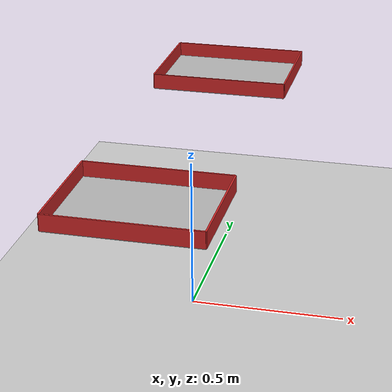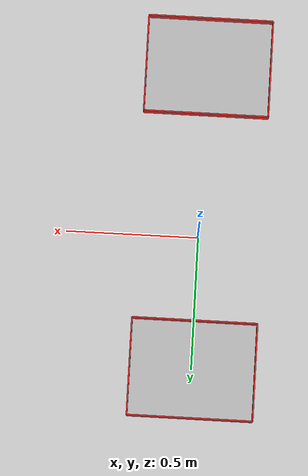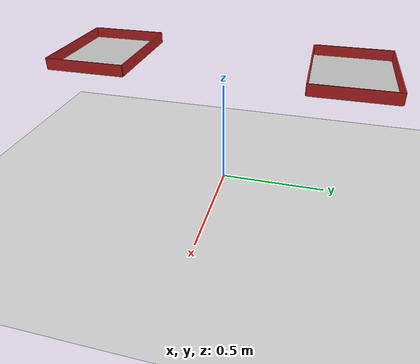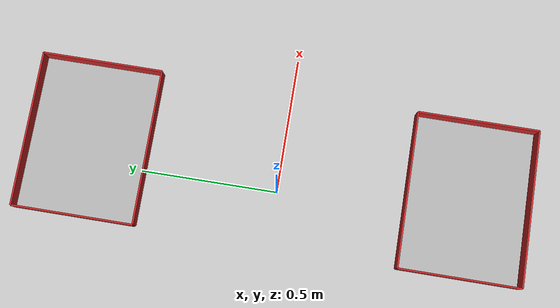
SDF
<sdf version="1.5">
 <world name="default">
  <include><uri>model://ground_plane</uri></include>
  <include><uri>model://sun</uri></include>
  <scene><shadows>0</shadows></scene>
  <model name="storage_left">
   <static>true</static>
   <include><uri>model://storage</uri></include>
   <pose>0 0.55 0.6 0 0 0</pose>
  </model>
  <model name="storage_right">
   <static>true</static>
   <include><uri>model://storage</uri></include>
   <pose>0 -0.55 0.6 0 0 0</pose>
  </model>
  <plugin name="gazebo_ros_state" filename="libgazebo_ros_state.so">
   <ros>
    <namespace>/ros2_grasp</namespace>
    <argument>model_states:=model_states</argument>
    <argument>link_states:=link_states</argument>
   </ros>
   <update_rate>1.0</update_rate>
  </plugin>
  <plugin name="gazebo_ros_properties" filename="libgazebo_ros_properties.so">
   <ros><namespace>/ros2_grasp</namespace></ros>
  </plugin>
 </world>
</sdf>

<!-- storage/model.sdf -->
<sdf version='1.6'>
  <model name='storage'>
    <link name='storage-base'>
      <pose frame=''>0 0 0 0 -0 0</pose>
      <inertial>
        <pose frame=''>0 0 0 0 -0 0</pose>
        <mass>1</mass>
        <inertia>
          <ixx>1</ixx>
          <ixy>0.01</ixy>
          <ixz>0.01</ixz>
          <iyy>1</iyy>
          <iyz>0.01</iyz>
          <izz>1</izz>
        </inertia>
      </inertial>
      <collision name='storage-base_collision'>
        <pose frame=''>0 0 0 0 -0 0</pose>
        <geometry>
          <box>
            <size>0.45 0.35 0.005</size>
          </box>
        </geometry>
        <surface>
          <contact>
            <ode>
              <kp>1e+06</kp>
              <kd>1</kd>
              <min_depth>0.001</min_depth>
            </ode>
          </contact>
          <friction>
            <ode>
              <mu>1</mu>
              <mu2>1</mu2>
            </ode>
          </friction>
        </surface>
      </collision>
      <collision name='storage-base_collision_1'>
        <pose frame=''>0 -0.175 0.025 1.57 -0 0</pose>
        <geometry>
          <box>
            <size>0.45 0.05 0.005</size>
          </box>
        </geometry>
        <surface>
          <contact>
            <ode>
              <kp>1e+06</kp>
              <kd>1</kd>
              <min_depth>0.001</min_depth>
            </ode>
          </contact>
          <friction>
            <ode>
              <mu>1</mu>
              <mu2>1</mu2>
            </ode>
          </friction>
        </surface>
      </collision>
      <collision name='storage-base_collision_2'>
        <pose frame=''>0 0.175 0.025 1.57 -0 0</pose>
        <geometry>
          <box>
            <size>0.45 0.05 0.005</size>
          </box>
        </geometry>
        <surface>
          <contact>
            <ode>
              <kp>1e+06</kp>
              <kd>1</kd>
              <min_depth>0.001</min_depth>
            </ode>
          </contact>
          <friction>
            <ode>
              <mu>1</mu>
              <mu2>1</mu2>
            </ode>
          </friction>
        </surface>
      </collision>
      <collision name='storage-base_collision_3'>
        <pose frame=''>0.225 0 0.025 3.14159 1.57079 3.14159</pose>
        <geometry>
          <box>
            <size>0.05 0.35 0.005</size>
          </box>
        </geometry>
        <surface>
          <contact>
            <ode>
              <kp>1e+06</kp>
              <kd>1</kd>
              <min_depth>0.001</min_depth>
            </ode>
          </contact>
          <friction>
            <ode>
              <mu>1</mu>
              <mu2>1</mu2>
            </ode>
          </friction>
        </surface>
      </collision>
      <collision name='storage-base_collision_4'>
        <pose frame=''>-0.225 0 0.025 3.14159 1.57079 3.14159</pose>
        <geometry>
          <box>
            <size>0.05 0.35 0.005</size>
          </box>
        </geometry>
        <surface>
          <contact>
            <ode>
              <kp>1e+06</kp>
              <kd>1</kd>
              <min_depth>0.001</min_depth>
            </ode>
          </contact>
          <friction>
            <ode>
              <mu>1</mu>
              <mu2>1</mu2>
            </ode>
          </friction>
        </surface>
      </collision>
      <visual name='storage-base_visual'>
        <pose frame=''>0 0 0 0 -0 0</pose>
        <geometry>
          <box>
            <size>0.45 0.35 0.005</size>
          </box>
        </geometry>
        <material>
          <script>
            <uri>model://book/materials/scripts</uri>
            <uri>model://book/materials/textures</uri>
          </script>
        </material>
      </visual>
      <visual name='storage-base_visual_1'>
        <pose frame=''>0 -0.175 0.025 1.57 -0 0</pose>
        <geometry>
          <box>
            <size>0.45 0.05 0.005</size>
          </box>
        </geometry>
        <material>
          <script>
            <name>Gazebo/Red</name>
            <uri>file://media/materials/scripts/gazebo.material</uri>
          </script>
        </material>
      </visual>
      <visual name='storage-base_visual_2'>
        <pose frame=''>0 0.175 0.025 1.57 -0 0</pose>
        <geometry>
          <box>
            <size>0.45 0.05 0.005</size>
          </box>
        </geometry>
        <material>
          <script>
            <name>Gazebo/Red</name>
            <uri>file://media/materials/scripts/gazebo.material</uri>
          </script>
        </material>
      </visual>
      <visual name='storage-base_visual_3'>
        <pose frame=''>0.225 0 0.025 3.14159 1.57079 3.14159</pose>
        <geometry>
          <box>
            <size>0.05 0.35 0.005</size>
          </box>
        </geometry>
        <material>
          <script>
            <name>Gazebo/Red</name>
            <uri>file://media/materials/scripts/gazebo.material</uri>
          </script>
        </material>
      </visual>
      <visual name='storage-base_visual_4'>
        <pose frame=''>-0.225 0 0.025 3.14159 1.57079 3.14159</pose>
        <geometry>
          <box>
            <size>0.05 0.35 0.005</size>
          </box>
        </geometry>
        <material>
          <script>
            <name>Gazebo/Red</name>
            <uri>file://media/materials/scripts/gazebo.material</uri>
          </script>
        </material>
      </visual>
      <gravity>1</gravity>
      <velocity_decay/>
    </link>
  </model>
</sdf>
